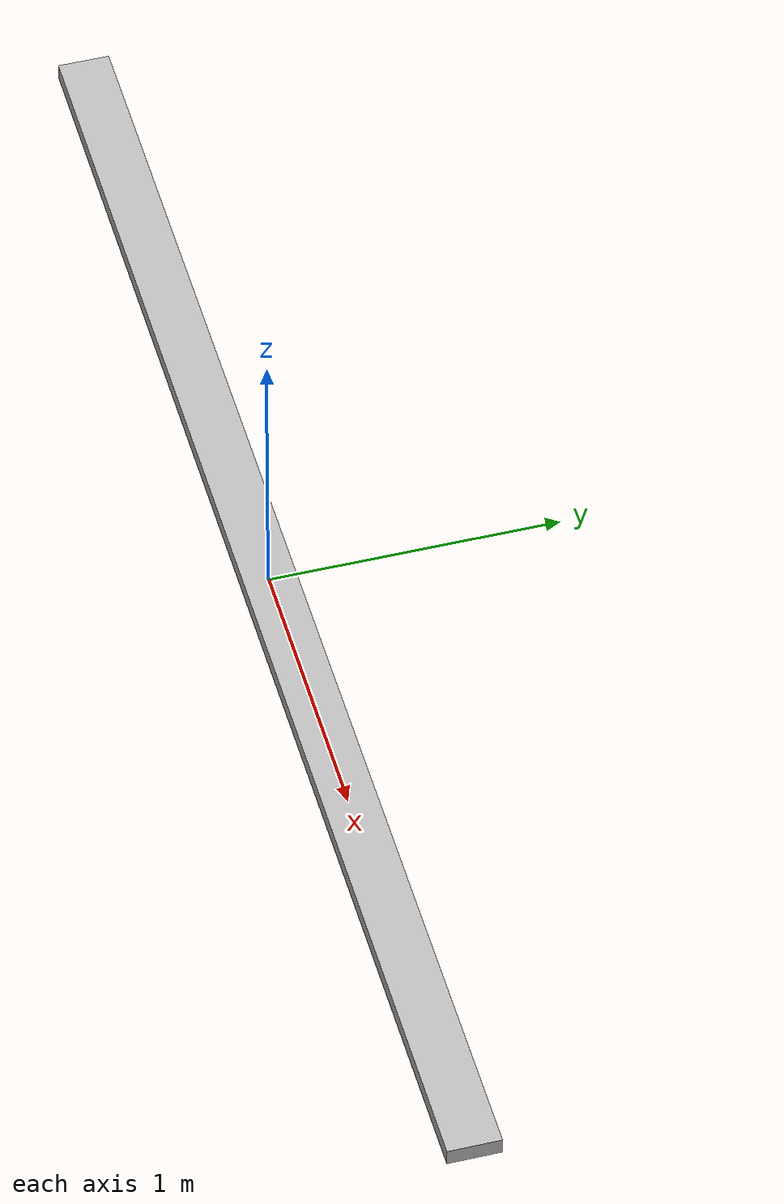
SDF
<?xml version="1.0" ?>

<sdf version="1.5">
    <world name="default">
        <!-- Target real time factor is the product of max_step_size and real_time_update_rate -->
        <!-- Negative real_time_update_rate means that Gazebo will run as fast as possible -->
        <physics type="ode">
            <max_step_size>0.001</max_step_size>
            <real_time_update_rate>1000</real_time_update_rate>
        </physics>

        <light name='sun' type='directional'>
            <cast_shadows>1</cast_shadows>
            <pose>0 0 10 0 -0 0</pose>
            <diffuse>0.8 0.8 0.8 1</diffuse>
            <specular>0.2 0.2 0.2 1</specular>
            <attenuation>
                <range>1000</range>
                <constant>0.9</constant>
                <linear>0.01</linear>
                <quadratic>0.001</quadratic>
            </attenuation>
            <direction>-0.5 0.1 -0.9</direction>
        </light>

        <model name='rmuc'>
            <static>true</static>
            <link name='rmuc_link'>
                <visual name='visual'>
                    <pose>0 0 0 0 0 0</pose>
                    <geometry>
                      <box>
                          <size>5 0.18 0.06</size>
                      </box>
                    </geometry>
                </visual>
                <collision name='collision'>
                    <pose>0 0 0 0 0 0</pose>
                    <geometry>
                        <box>
                            <size>5 0.18 0.06</size>
                        </box>

                    </geometry>
                    <max_contacts>10</max_contacts>
                    <surface>
                        <bounce/>
                        <friction>
                            <ode/>
                        </friction>
                        <contact>
                            <ode/>
                        </contact>
                    </surface>
                </collision>
                <velocity_decay>
                    <linear>0</linear>
                    <angular>0</angular>
                </velocity_decay>
                <self_collide>0</self_collide>
                <kinematic>0</kinematic>
                <gravity>1</gravity>
            </link>
            <static>1</static>
        </model>
    </world>
</sdf>
